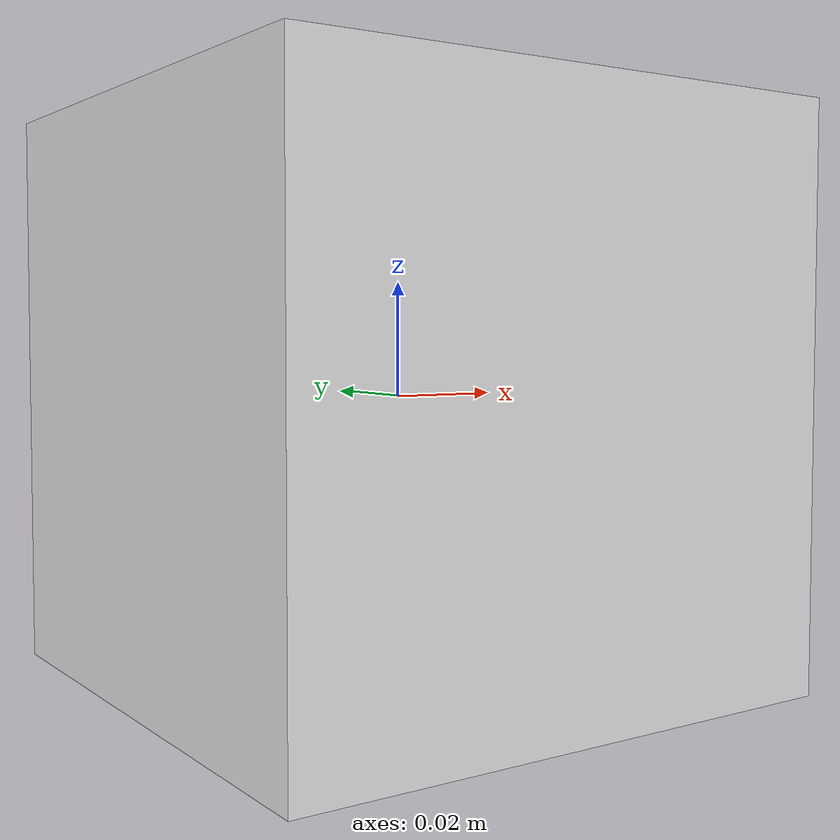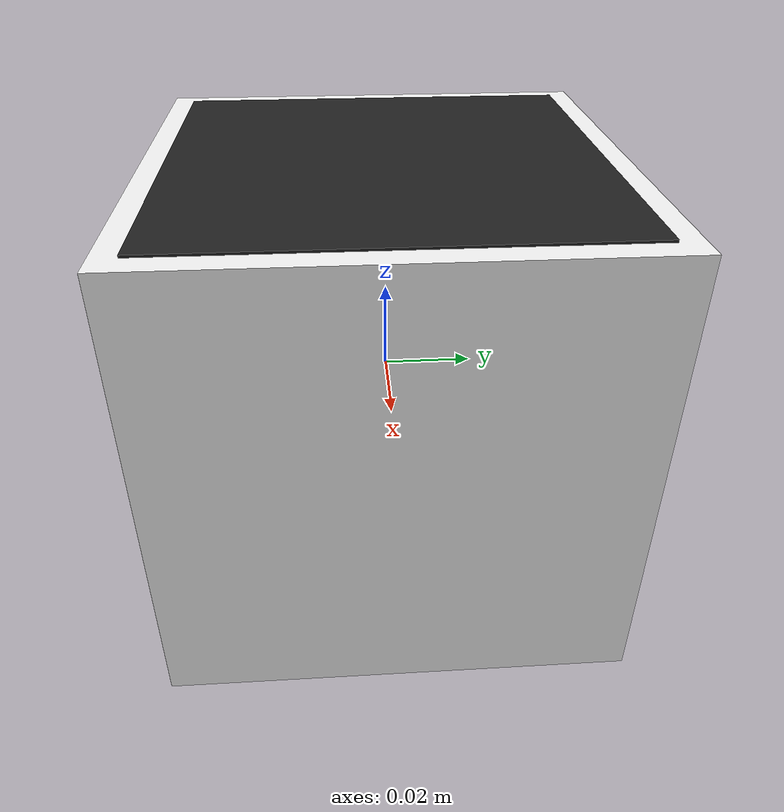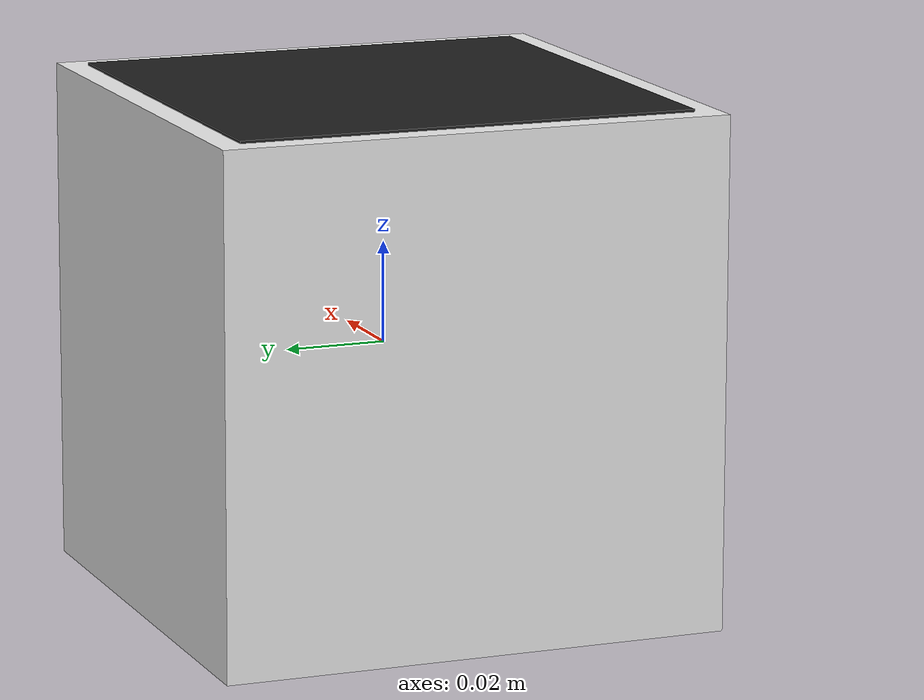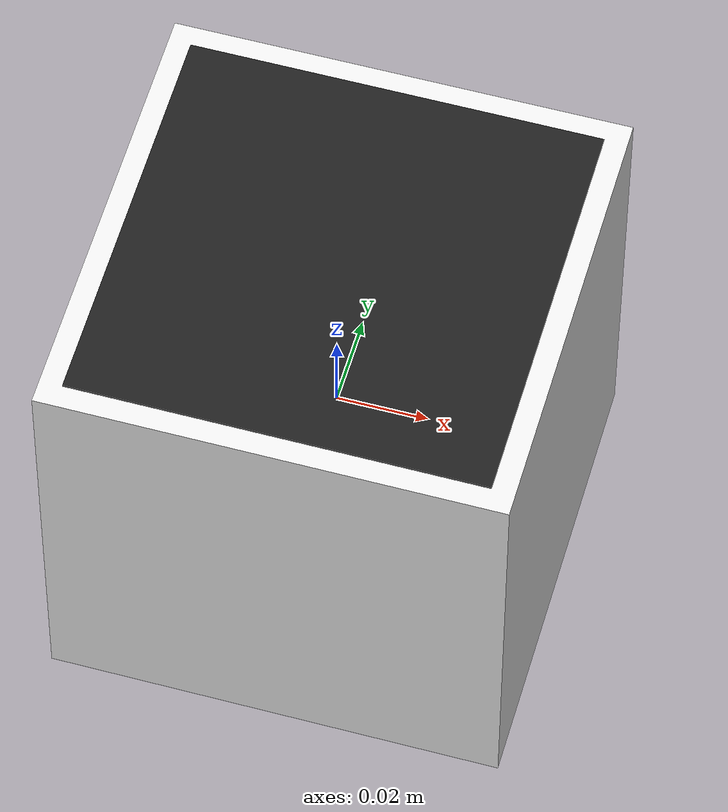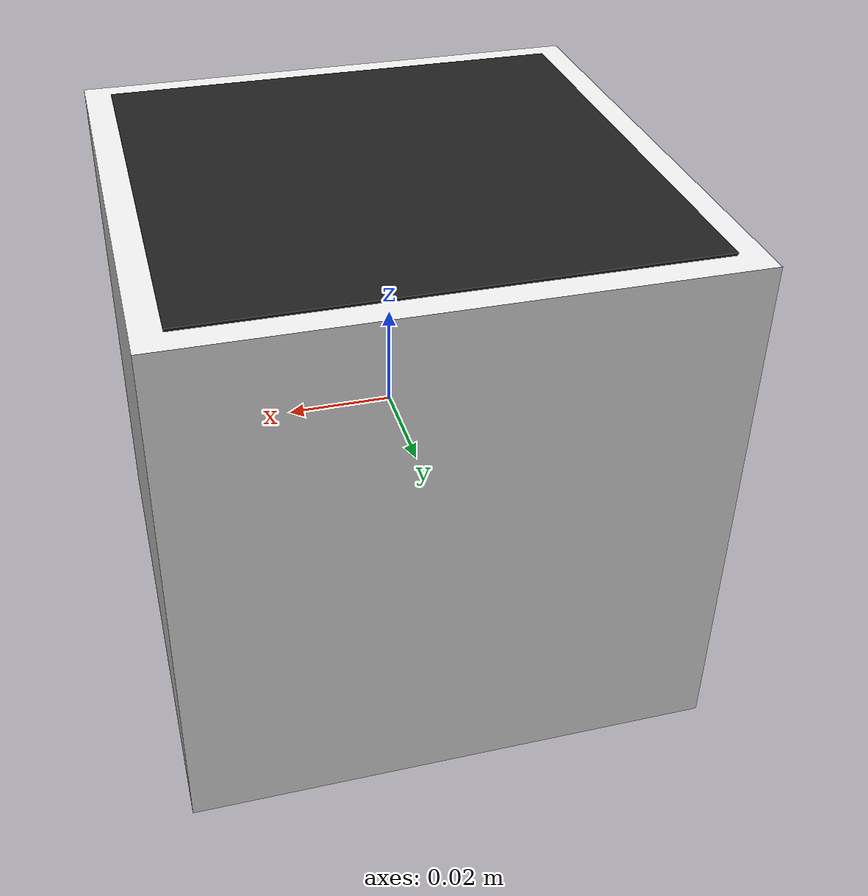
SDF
<?xml version="1.0" ?>
<sdf version="1.6">
  <model name="qr_code">
    <static>false</static>

    <link name="qr_code_link">
      <inertial>
        <mass>0.01</mass>
        <inertia>
          <ixx>0.000001</ixx>
          <ixy>0</ixy>
          <ixz>0</ixz>
          <iyy>0.000001</iyy>
          <iyz>0</iyz>
          <izz>0.000001</izz>
        </inertia>
      </inertial>

      <collision name="collision">
        <geometry>
          <box>
            <size>0.1 0.1 0.1</size>
          </box>
        </geometry>
      </collision>

      <visual name="visual">
        <geometry>
          <box>
            <size>0.1 0.1 0.1</size>
          </box>
        </geometry>
        <material>
          <script>
            <uri>file://media/materials/scripts/gazebo.material</uri>
            <name>Gazebo/White</name>
          </script>
        </material>
      </visual>

      <!-- Visual for QR pattern on top face -->
      <visual name="qr_pattern">
        <pose>0 0 0.05 0 0 0</pose>
        <geometry>
          <box>
            <size>0.09 0.09 0.001</size>
          </box>
        </geometry>
        <material>
          <script>
            <uri>file://media/materials/scripts/gazebo.material</uri>
            <name>Gazebo/Black</name>
          </script>
        </material>
      </visual>

    </link>

    <!-- Plugin for trajectory control -->

  </model>
</sdf>
